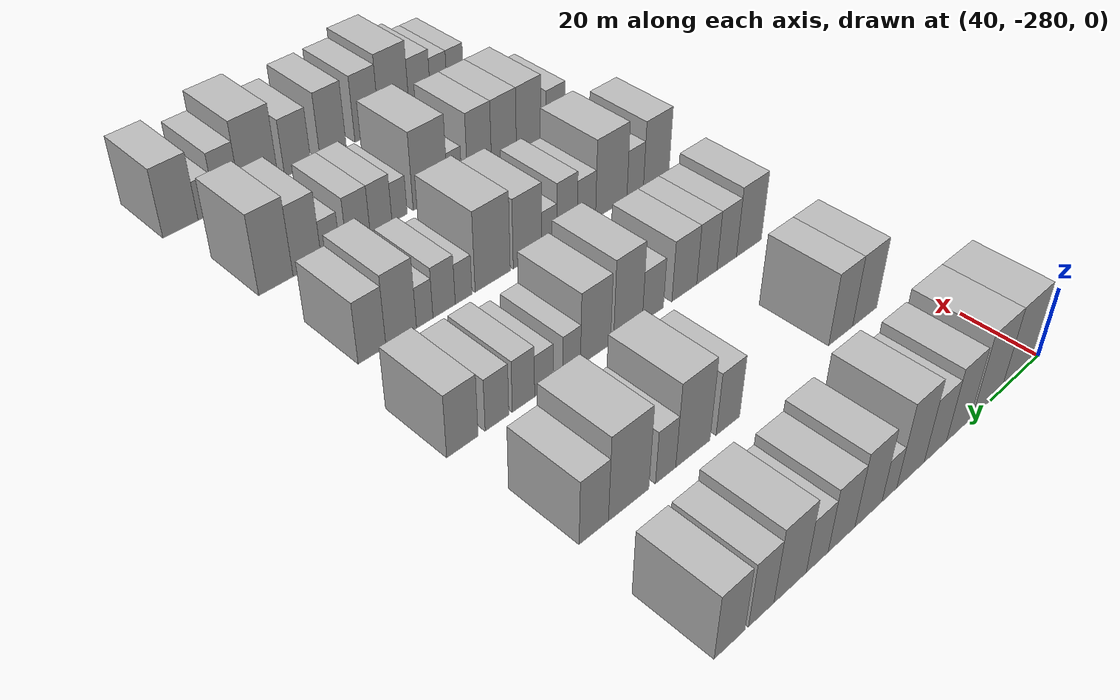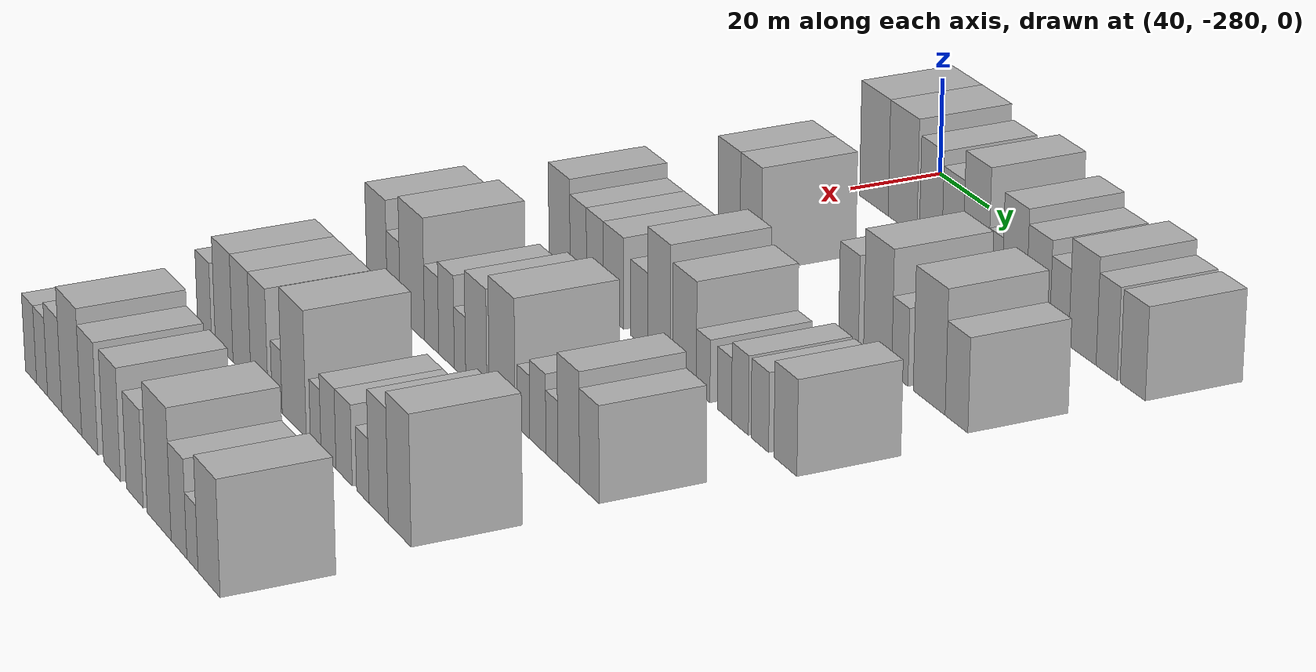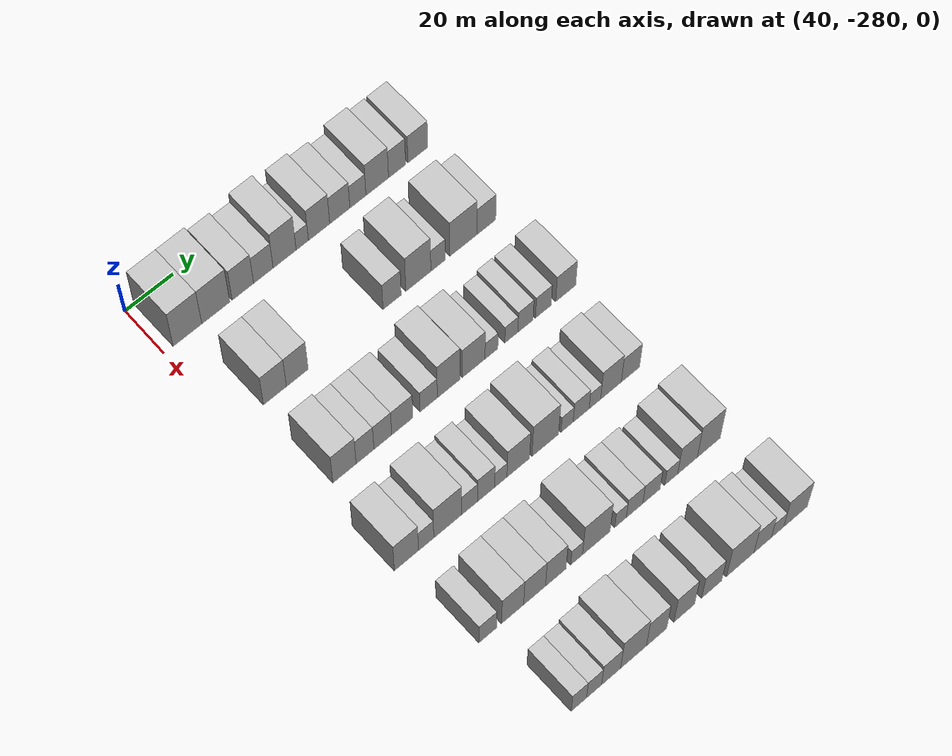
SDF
<sdf version="1.6">
 <world name="default">
  <model name="building_31">
   <static>1</static>
   <pose>50.0000 -270.3185 0 0.000000 0.000000 0.000000</pose>
   <link name="link">
    <pose>0 0 12.00 0 0 0</pose>
    <collision name="collision"><geometry><box><size>20.0000 11.9749 24.0000</size></box></geometry></collision>
    <visual name="visual">
     <cast_shadows>0</cast_shadows>
     <geometry><box><size>20.0000 11.9749 24.0000</size></box></geometry>
     <material>
      <script>
       <uri>model://HANNAS_wall/materials/scripts</uri>
       <uri>model://HANNAS_wall/materials/textures</uri>
       <name>vrc/HANNAS_wall</name>
      </script>
     </material>
    </visual>
   </link>
  </model>
  <model name="building_32">
   <static>1</static>
   <pose>50.0000 -258.4586 0 0.000000 0.000000 0.000000</pose>
   <link name="link">
    <pose>0 0 12.00 0 0 0</pose>
    <collision name="collision"><geometry><box><size>20.0000 11.7450 24.0000</size></box></geometry></collision>
    <visual name="visual">
     <cast_shadows>0</cast_shadows>
     <geometry><box><size>20.0000 11.7450 24.0000</size></box></geometry>
     <material>
      <script>
       <uri>model://HANNAS_wall/materials/scripts</uri>
       <uri>model://HANNAS_wall/materials/textures</uri>
       <name>vrc/HANNAS_wall</name>
      </script>
     </material>
    </visual>
   </link>
  </model>
  <model name="building_33">
   <static>1</static>
   <pose>50.0000 -247.0642 0 0.000000 0.000000 0.000000</pose>
   <link name="link">
    <pose>0 0 10.50 0 0 0</pose>
    <collision name="collision"><geometry><box><size>20.0000 9.0438 21.0000</size></box></geometry></collision>
    <visual name="visual">
     <cast_shadows>0</cast_shadows>
     <geometry><box><size>20.0000 9.0438 21.0000</size></box></geometry>
     <material>
      <script>
       <uri>model://HANNAS_wall/materials/scripts</uri>
       <uri>model://HANNAS_wall/materials/textures</uri>
       <name>vrc/HANNAS_wall</name>
      </script>
     </material>
    </visual>
   </link>
  </model>
  <model name="building_34">
   <static>1</static>
   <pose>50.0000 -238.4008 0 0.000000 0.000000 0.000000</pose>
   <link name="link">
    <pose>0 0 9.00 0 0 0</pose>
    <collision name="collision"><geometry><box><size>20.0000 8.2828 18.0000</size></box></geometry></collision>
    <visual name="visual">
     <cast_shadows>0</cast_shadows>
     <geometry><box><size>20.0000 8.2828 18.0000</size></box></geometry>
     <material>
      <script>
       <uri>model://HANNAS_wall/materials/scripts</uri>
       <uri>model://HANNAS_wall/materials/textures</uri>
       <name>vrc/HANNAS_wall</name>
      </script>
     </material>
    </visual>
   </link>
  </model>
  <model name="building_35">
   <static>1</static>
   <pose>50.0000 -229.3392 0 0.000000 0.000000 0.000000</pose>
   <link name="link">
    <pose>0 0 12.00 0 0 0</pose>
    <collision name="collision"><geometry><box><size>20.0000 9.8405 24.0000</size></box></geometry></collision>
    <visual name="visual">
     <cast_shadows>0</cast_shadows>
     <geometry><box><size>20.0000 9.8405 24.0000</size></box></geometry>
     <material>
      <script>
       <uri>model://HANNAS_wall/materials/scripts</uri>
       <uri>model://HANNAS_wall/materials/textures</uri>
       <name>vrc/HANNAS_wall</name>
      </script>
     </material>
    </visual>
   </link>
  </model>
  <model name="building_36">
   <static>1</static>
   <pose>50.0000 -221.7960 0 0.000000 0.000000 0.000000</pose>
   <link name="link">
    <pose>0 0 6.00 0 0 0</pose>
    <collision name="collision"><geometry><box><size>20.0000 5.2460 12.0000</size></box></geometry></collision>
    <visual name="visual">
     <cast_shadows>0</cast_shadows>
     <geometry><box><size>20.0000 5.2460 12.0000</size></box></geometry>
     <material>
      <script>
       <uri>model://HANNAS_wall/materials/scripts</uri>
       <uri>model://HANNAS_wall/materials/textures</uri>
       <name>vrc/HANNAS_wall</name>
      </script>
     </material>
    </visual>
   </link>
  </model>
  <model name="building_37">
   <static>1</static>
   <pose>50.0000 -214.5822 0 0.000000 0.000000 0.000000</pose>
   <link name="link">
    <pose>0 0 10.50 0 0 0</pose>
    <collision name="collision"><geometry><box><size>20.0000 9.1816 21.0000</size></box></geometry></collision>
    <visual name="visual">
     <cast_shadows>0</cast_shadows>
     <geometry><box><size>20.0000 9.1816 21.0000</size></box></geometry>
     <material>
      <script>
       <uri>model://HANNAS_wall/materials/scripts</uri>
       <uri>model://HANNAS_wall/materials/textures</uri>
       <name>vrc/HANNAS_wall</name>
      </script>
     </material>
    </visual>
   </link>
  </model>
  <model name="building_38">
   <static>1</static>
   <pose>50.0000 -205.6249 0 0.000000 0.000000 0.000000</pose>
   <link name="link">
    <pose>0 0 9.00 0 0 0</pose>
    <collision name="collision"><geometry><box><size>20.0000 8.7328 18.0000</size></box></geometry></collision>
    <visual name="visual">
     <cast_shadows>0</cast_shadows>
     <geometry><box><size>20.0000 8.7328 18.0000</size></box></geometry>
     <material>
      <script>
       <uri>model://HANNAS_wall/materials/scripts</uri>
       <uri>model://HANNAS_wall/materials/textures</uri>
       <name>vrc/HANNAS_wall</name>
      </script>
     </material>
    </visual>
   </link>
  </model>
  <model name="building_39">
   <static>1</static>
   <pose>50.0000 -197.7768 0 0.000000 0.000000 0.000000</pose>
   <link name="link">
    <pose>0 0 7.50 0 0 0</pose>
    <collision name="collision"><geometry><box><size>20.0000 6.9634 15.0000</size></box></geometry></collision>
    <visual name="visual">
     <cast_shadows>0</cast_shadows>
     <geometry><box><size>20.0000 6.9634 15.0000</size></box></geometry>
     <material>
      <script>
       <uri>model://HANNAS_wall/materials/scripts</uri>
       <uri>model://HANNAS_wall/materials/textures</uri>
       <name>vrc/HANNAS_wall</name>
      </script>
     </material>
    </visual>
   </link>
  </model>
  <model name="building_40">
   <static>1</static>
   <pose>50.0000 -189.3632 0 0.000000 0.000000 0.000000</pose>
   <link name="link">
    <pose>0 0 10.50 0 0 0</pose>
    <collision name="collision"><geometry><box><size>20.0000 9.8637 21.0000</size></box></geometry></collision>
    <visual name="visual">
     <cast_shadows>0</cast_shadows>
     <geometry><box><size>20.0000 9.8637 21.0000</size></box></geometry>
     <material>
      <script>
       <uri>model://HANNAS_wall/materials/scripts</uri>
       <uri>model://HANNAS_wall/materials/textures</uri>
       <name>vrc/HANNAS_wall</name>
      </script>
     </material>
    </visual>
   </link>
  </model>
  <model name="building_41">
   <static>1</static>
   <pose>50.0000 -180.6862 0 0.000000 0.000000 0.000000</pose>
   <link name="link">
    <pose>0 0 9.00 0 0 0</pose>
    <collision name="collision"><geometry><box><size>20.0000 7.4904 18.0000</size></box></geometry></collision>
    <visual name="visual">
     <cast_shadows>0</cast_shadows>
     <geometry><box><size>20.0000 7.4904 18.0000</size></box></geometry>
     <material>
      <script>
       <uri>model://HANNAS_wall/materials/scripts</uri>
       <uri>model://HANNAS_wall/materials/textures</uri>
       <name>vrc/HANNAS_wall</name>
      </script>
     </material>
    </visual>
   </link>
  </model>
  <model name="building_42">
   <static>1</static>
   <pose>50.0000 -171.5861 0 0.000000 0.000000 0.000000</pose>
   <link name="link">
    <pose>0 0 9.00 0 0 0</pose>
    <collision name="collision"><geometry><box><size>20.0000 8.7097 18.0000</size></box></geometry></collision>
    <visual name="visual">
     <cast_shadows>0</cast_shadows>
     <geometry><box><size>20.0000 8.7097 18.0000</size></box></geometry>
     <material>
      <script>
       <uri>model://HANNAS_wall/materials/scripts</uri>
       <uri>model://HANNAS_wall/materials/textures</uri>
       <name>vrc/HANNAS_wall</name>
      </script>
     </material>
    </visual>
   </link>
  </model>
  <model name="building_164">
   <static>1</static>
   <pose>85.0000 -263.0079 0 0.000000 0.000000 0.000000</pose>
   <link name="link">
    <pose>0 0 10.50 0 0 0</pose>
    <collision name="collision"><geometry><box><size>20.0000 9.5994 21.0000</size></box></geometry></collision>
    <visual name="visual">
     <cast_shadows>0</cast_shadows>
     <geometry><box><size>20.0000 9.5994 21.0000</size></box></geometry>
     <material>
      <script>
       <uri>model://HANNAS_wall/materials/scripts</uri>
       <uri>model://HANNAS_wall/materials/textures</uri>
       <name>vrc/HANNAS_wall</name>
      </script>
     </material>
    </visual>
   </link>
  </model>
  <model name="building_165">
   <static>1</static>
   <pose>85.0000 -253.6409 0 0.000000 0.000000 0.000000</pose>
   <link name="link">
    <pose>0 0 10.50 0 0 0</pose>
    <collision name="collision"><geometry><box><size>20.0000 9.1347 21.0000</size></box></geometry></collision>
    <visual name="visual">
     <cast_shadows>0</cast_shadows>
     <geometry><box><size>20.0000 9.1347 21.0000</size></box></geometry>
     <material>
      <script>
       <uri>model://HANNAS_wall/materials/scripts</uri>
       <uri>model://HANNAS_wall/materials/textures</uri>
       <name>vrc/HANNAS_wall</name>
      </script>
     </material>
    </visual>
   </link>
  </model>
  <model name="building_166">
   <static>1</static>
   <pose>85.0000 -213.3983 0 0.000000 0.000000 0.000000</pose>
   <link name="link">
    <pose>0 0 9.00 0 0 0</pose>
    <collision name="collision"><geometry><box><size>20.0000 7.7835 18.0000</size></box></geometry></collision>
    <visual name="visual">
     <cast_shadows>0</cast_shadows>
     <geometry><box><size>20.0000 7.7835 18.0000</size></box></geometry>
     <material>
      <script>
       <uri>model://HANNAS_wall/materials/scripts</uri>
       <uri>model://HANNAS_wall/materials/textures</uri>
       <name>vrc/HANNAS_wall</name>
      </script>
     </material>
    </visual>
   </link>
  </model>
  <model name="building_167">
   <static>1</static>
   <pose>85.0000 -202.0763 0 0.000000 0.000000 0.000000</pose>
   <link name="link">
    <pose>0 0 12.00 0 0 0</pose>
    <collision name="collision"><geometry><box><size>20.0000 10.8606 24.0000</size></box></geometry></collision>
    <visual name="visual">
     <cast_shadows>0</cast_shadows>
     <geometry><box><size>20.0000 10.8606 24.0000</size></box></geometry>
     <material>
      <script>
       <uri>model://HANNAS_wall/materials/scripts</uri>
       <uri>model://HANNAS_wall/materials/textures</uri>
       <name>vrc/HANNAS_wall</name>
      </script>
     </material>
    </visual>
   </link>
  </model>
  <model name="building_168">
   <static>1</static>
   <pose>85.0000 -193.5476 0 0.000000 0.000000 0.000000</pose>
   <link name="link">
    <pose>0 0 7.50 0 0 0</pose>
    <collision name="collision"><geometry><box><size>20.0000 6.1969 15.0000</size></box></geometry></collision>
    <visual name="visual">
     <cast_shadows>0</cast_shadows>
     <geometry><box><size>20.0000 6.1969 15.0000</size></box></geometry>
     <material>
      <script>
       <uri>model://HANNAS_wall/materials/scripts</uri>
       <uri>model://HANNAS_wall/materials/textures</uri>
       <name>vrc/HANNAS_wall</name>
      </script>
     </material>
    </visual>
   </link>
  </model>
  <model name="building_169">
   <static>1</static>
   <pose>85.0000 -182.5237 0 0.000000 0.000000 0.000000</pose>
   <link name="link">
    <pose>0 0 12.00 0 0 0</pose>
    <collision name="collision"><geometry><box><size>20.0000 11.8508 24.0000</size></box></geometry></collision>
    <visual name="visual">
     <cast_shadows>0</cast_shadows>
     <geometry><box><size>20.0000 11.8508 24.0000</size></box></geometry>
     <material>
      <script>
       <uri>model://HANNAS_wall/materials/scripts</uri>
       <uri>model://HANNAS_wall/materials/textures</uri>
       <name>vrc/HANNAS_wall</name>
      </script>
     </material>
    </visual>
   </link>
  </model>
  <model name="building_170">
   <static>1</static>
   <pose>85.0000 -172.4711 0 0.000000 0.000000 0.000000</pose>
   <link name="link">
    <pose>0 0 9.00 0 0 0</pose>
    <collision name="collision"><geometry><box><size>20.0000 8.2545 18.0000</size></box></geometry></collision>
    <visual name="visual">
     <cast_shadows>0</cast_shadows>
     <geometry><box><size>20.0000 8.2545 18.0000</size></box></geometry>
     <material>
      <script>
       <uri>model://HANNAS_wall/materials/scripts</uri>
       <uri>model://HANNAS_wall/materials/textures</uri>
       <name>vrc/HANNAS_wall</name>
      </script>
     </material>
    </visual>
   </link>
  </model>
  <model name="building_288">
   <static>1</static>
   <pose>120.0000 -263.8185 0 0.000000 0.000000 0.000000</pose>
   <link name="link">
    <pose>0 0 10.50 0 0 0</pose>
    <collision name="collision"><geometry><box><size>20.0000 9.7054 21.0000</size></box></geometry></collision>
    <visual name="visual">
     <cast_shadows>0</cast_shadows>
     <geometry><box><size>20.0000 9.7054 21.0000</size></box></geometry>
     <material>
      <script>
       <uri>model://HANNAS_wall/materials/scripts</uri>
       <uri>model://HANNAS_wall/materials/textures</uri>
       <name>vrc/HANNAS_wall</name>
      </script>
     </material>
    </visual>
   </link>
  </model>
  <model name="building_289">
   <static>1</static>
   <pose>120.0000 -255.2500 0 0.000000 0.000000 0.000000</pose>
   <link name="link">
    <pose>0 0 9.00 0 0 0</pose>
    <collision name="collision"><geometry><box><size>20.0000 7.4316 18.0000</size></box></geometry></collision>
    <visual name="visual">
     <cast_shadows>0</cast_shadows>
     <geometry><box><size>20.0000 7.4316 18.0000</size></box></geometry>
     <material>
      <script>
       <uri>model://HANNAS_wall/materials/scripts</uri>
       <uri>model://HANNAS_wall/materials/textures</uri>
       <name>vrc/HANNAS_wall</name>
      </script>
     </material>
    </visual>
   </link>
  </model>
  <model name="building_290">
   <static>1</static>
   <pose>120.0000 -247.8072 0 0.000000 0.000000 0.000000</pose>
   <link name="link">
    <pose>0 0 9.00 0 0 0</pose>
    <collision name="collision"><geometry><box><size>20.0000 7.4539 18.0000</size></box></geometry></collision>
    <visual name="visual">
     <cast_shadows>0</cast_shadows>
     <geometry><box><size>20.0000 7.4539 18.0000</size></box></geometry>
     <material>
      <script>
       <uri>model://HANNAS_wall/materials/scripts</uri>
       <uri>model://HANNAS_wall/materials/textures</uri>
       <name>vrc/HANNAS_wall</name>
      </script>
     </material>
    </visual>
   </link>
  </model>
  <model name="building_291">
   <static>1</static>
   <pose>120.0000 -239.5957 0 0.000000 0.000000 0.000000</pose>
   <link name="link">
    <pose>0 0 9.00 0 0 0</pose>
    <collision name="collision"><geometry><box><size>20.0000 8.9692 18.0000</size></box></geometry></collision>
    <visual name="visual">
     <cast_shadows>0</cast_shadows>
     <geometry><box><size>20.0000 8.9692 18.0000</size></box></geometry>
     <material>
      <script>
       <uri>model://HANNAS_wall/materials/scripts</uri>
       <uri>model://HANNAS_wall/materials/textures</uri>
       <name>vrc/HANNAS_wall</name>
      </script>
     </material>
    </visual>
   </link>
  </model>
  <model name="building_292">
   <static>1</static>
   <pose>120.0000 -228.4507 0 0.000000 0.000000 0.000000</pose>
   <link name="link">
    <pose>0 0 7.50 0 0 0</pose>
    <collision name="collision"><geometry><box><size>20.0000 7.3207 15.0000</size></box></geometry></collision>
    <visual name="visual">
     <cast_shadows>0</cast_shadows>
     <geometry><box><size>20.0000 7.3207 15.0000</size></box></geometry>
     <material>
      <script>
       <uri>model://HANNAS_wall/materials/scripts</uri>
       <uri>model://HANNAS_wall/materials/textures</uri>
       <name>vrc/HANNAS_wall</name>
      </script>
     </material>
    </visual>
   </link>
  </model>
  <model name="building_293">
   <static>1</static>
   <pose>120.0000 -219.9503 0 0.000000 0.000000 0.000000</pose>
   <link name="link">
    <pose>0 0 12.00 0 0 0</pose>
    <collision name="collision"><geometry><box><size>20.0000 9.6802 24.0000</size></box></geometry></collision>
    <visual name="visual">
     <cast_shadows>0</cast_shadows>
     <geometry><box><size>20.0000 9.6802 24.0000</size></box></geometry>
     <material>
      <script>
       <uri>model://HANNAS_wall/materials/scripts</uri>
       <uri>model://HANNAS_wall/materials/textures</uri>
       <name>vrc/HANNAS_wall</name>
      </script>
     </material>
    </visual>
   </link>
  </model>
  <model name="building_294">
   <static>1</static>
   <pose>120.0000 -209.2475 0 0.000000 0.000000 0.000000</pose>
   <link name="link">
    <pose>0 0 10.50 0 0 0</pose>
    <collision name="collision"><geometry><box><size>20.0000 9.7254 21.0000</size></box></geometry></collision>
    <visual name="visual">
     <cast_shadows>0</cast_shadows>
     <geometry><box><size>20.0000 9.7254 21.0000</size></box></geometry>
     <material>
      <script>
       <uri>model://HANNAS_wall/materials/scripts</uri>
       <uri>model://HANNAS_wall/materials/textures</uri>
       <name>vrc/HANNAS_wall</name>
      </script>
     </material>
    </visual>
   </link>
  </model>
  <model name="building_295">
   <static>1</static>
   <pose>120.0000 -201.6144 0 0.000000 0.000000 0.000000</pose>
   <link name="link">
    <pose>0 0 6.00 0 0 0</pose>
    <collision name="collision"><geometry><box><size>20.0000 5.5409 12.0000</size></box></geometry></collision>
    <visual name="visual">
     <cast_shadows>0</cast_shadows>
     <geometry><box><size>20.0000 5.5409 12.0000</size></box></geometry>
     <material>
      <script>
       <uri>model://HANNAS_wall/materials/scripts</uri>
       <uri>model://HANNAS_wall/materials/textures</uri>
       <name>vrc/HANNAS_wall</name>
      </script>
     </material>
    </visual>
   </link>
  </model>
  <model name="building_296">
   <static>1</static>
   <pose>120.0000 -193.0082 0 0.000000 0.000000 0.000000</pose>
   <link name="link">
    <pose>0 0 6.00 0 0 0</pose>
    <collision name="collision"><geometry><box><size>20.0000 5.6714 12.0000</size></box></geometry></collision>
    <visual name="visual">
     <cast_shadows>0</cast_shadows>
     <geometry><box><size>20.0000 5.6714 12.0000</size></box></geometry>
     <material>
      <script>
       <uri>model://HANNAS_wall/materials/scripts</uri>
       <uri>model://HANNAS_wall/materials/textures</uri>
       <name>vrc/HANNAS_wall</name>
      </script>
     </material>
    </visual>
   </link>
  </model>
  <model name="building_297">
   <static>1</static>
   <pose>120.0000 -186.8403 0 0.000000 0.000000 0.000000</pose>
   <link name="link">
    <pose>0 0 7.50 0 0 0</pose>
    <collision name="collision"><geometry><box><size>20.0000 6.6644 15.0000</size></box></geometry></collision>
    <visual name="visual">
     <cast_shadows>0</cast_shadows>
     <geometry><box><size>20.0000 6.6644 15.0000</size></box></geometry>
     <material>
      <script>
       <uri>model://HANNAS_wall/materials/scripts</uri>
       <uri>model://HANNAS_wall/materials/textures</uri>
       <name>vrc/HANNAS_wall</name>
      </script>
     </material>
    </visual>
   </link>
  </model>
  <model name="building_298">
   <static>1</static>
   <pose>120.0000 -179.0783 0 0.000000 0.000000 0.000000</pose>
   <link name="link">
    <pose>0 0 7.50 0 0 0</pose>
    <collision name="collision"><geometry><box><size>20.0000 6.8597 15.0000</size></box></geometry></collision>
    <visual name="visual">
     <cast_shadows>0</cast_shadows>
     <geometry><box><size>20.0000 6.8597 15.0000</size></box></geometry>
     <material>
      <script>
       <uri>model://HANNAS_wall/materials/scripts</uri>
       <uri>model://HANNAS_wall/materials/textures</uri>
       <name>vrc/HANNAS_wall</name>
      </script>
     </material>
    </visual>
   </link>
  </model>
  <model name="building_299">
   <static>1</static>
   <pose>120.0000 -169.2567 0 0.000000 0.000000 0.000000</pose>
   <link name="link">
    <pose>0 0 9.00 0 0 0</pose>
    <collision name="collision"><geometry><box><size>20.0000 8.7834 18.0000</size></box></geometry></collision>
    <visual name="visual">
     <cast_shadows>0</cast_shadows>
     <geometry><box><size>20.0000 8.7834 18.0000</size></box></geometry>
     <material>
      <script>
       <uri>model://HANNAS_wall/materials/scripts</uri>
       <uri>model://HANNAS_wall/materials/textures</uri>
       <name>vrc/HANNAS_wall</name>
      </script>
     </material>
    </visual>
   </link>
  </model>
  <model name="building_414">
   <static>1</static>
   <pose>155.0000 -268.5350 0 0.000000 0.000000 0.000000</pose>
   <link name="link">
    <pose>0 0 10.50 0 0 0</pose>
    <collision name="collision"><geometry><box><size>20.0000 10.0150 21.0000</size></box></geometry></collision>
    <visual name="visual">
     <cast_shadows>0</cast_shadows>
     <geometry><box><size>20.0000 10.0150 21.0000</size></box></geometry>
     <material>
      <script>
       <uri>model://HANNAS_wall/materials/scripts</uri>
       <uri>model://HANNAS_wall/materials/textures</uri>
       <name>vrc/HANNAS_wall</name>
      </script>
     </material>
    </visual>
   </link>
  </model>
  <model name="building_415">
   <static>1</static>
   <pose>155.0000 -260.3625 0 0.000000 0.000000 0.000000</pose>
   <link name="link">
    <pose>0 0 7.50 0 0 0</pose>
    <collision name="collision"><geometry><box><size>20.0000 6.3299 15.0000</size></box></geometry></collision>
    <visual name="visual">
     <cast_shadows>0</cast_shadows>
     <geometry><box><size>20.0000 6.3299 15.0000</size></box></geometry>
     <material>
      <script>
       <uri>model://HANNAS_wall/materials/scripts</uri>
       <uri>model://HANNAS_wall/materials/textures</uri>
       <name>vrc/HANNAS_wall</name>
      </script>
     </material>
    </visual>
   </link>
  </model>
  <model name="building_416">
   <static>1</static>
   <pose>155.0000 -251.3551 0 0.000000 0.000000 0.000000</pose>
   <link name="link">
    <pose>0 0 12.00 0 0 0</pose>
    <collision name="collision"><geometry><box><size>20.0000 11.6850 24.0000</size></box></geometry></collision>
    <visual name="visual">
     <cast_shadows>0</cast_shadows>
     <geometry><box><size>20.0000 11.6850 24.0000</size></box></geometry>
     <material>
      <script>
       <uri>model://HANNAS_wall/materials/scripts</uri>
       <uri>model://HANNAS_wall/materials/textures</uri>
       <name>vrc/HANNAS_wall</name>
      </script>
     </material>
    </visual>
   </link>
  </model>
  <model name="building_417">
   <static>1</static>
   <pose>155.0000 -242.1895 0 0.000000 0.000000 0.000000</pose>
   <link name="link">
    <pose>0 0 7.50 0 0 0</pose>
    <collision name="collision"><geometry><box><size>20.0000 6.6463 15.0000</size></box></geometry></collision>
    <visual name="visual">
     <cast_shadows>0</cast_shadows>
     <geometry><box><size>20.0000 6.6463 15.0000</size></box></geometry>
     <material>
      <script>
       <uri>model://HANNAS_wall/materials/scripts</uri>
       <uri>model://HANNAS_wall/materials/textures</uri>
       <name>vrc/HANNAS_wall</name>
      </script>
     </material>
    </visual>
   </link>
  </model>
  <model name="building_418">
   <static>1</static>
   <pose>155.0000 -235.2524 0 0.000000 0.000000 0.000000</pose>
   <link name="link">
    <pose>0 0 9.00 0 0 0</pose>
    <collision name="collision"><geometry><box><size>20.0000 7.2278 18.0000</size></box></geometry></collision>
    <visual name="visual">
     <cast_shadows>0</cast_shadows>
     <geometry><box><size>20.0000 7.2278 18.0000</size></box></geometry>
     <material>
      <script>
       <uri>model://HANNAS_wall/materials/scripts</uri>
       <uri>model://HANNAS_wall/materials/textures</uri>
       <name>vrc/HANNAS_wall</name>
      </script>
     </material>
    </visual>
   </link>
  </model>
  <model name="building_419">
   <static>1</static>
   <pose>155.0000 -229.0465 0 0.000000 0.000000 0.000000</pose>
   <link name="link">
    <pose>0 0 6.00 0 0 0</pose>
    <collision name="collision"><geometry><box><size>20.0000 5.1840 12.0000</size></box></geometry></collision>
    <visual name="visual">
     <cast_shadows>0</cast_shadows>
     <geometry><box><size>20.0000 5.1840 12.0000</size></box></geometry>
     <material>
      <script>
       <uri>model://HANNAS_wall/materials/scripts</uri>
       <uri>model://HANNAS_wall/materials/textures</uri>
       <name>vrc/HANNAS_wall</name>
      </script>
     </material>
    </visual>
   </link>
  </model>
  <model name="building_420">
   <static>1</static>
   <pose>155.0000 -221.6247 0 0.000000 0.000000 0.000000</pose>
   <link name="link">
    <pose>0 0 10.50 0 0 0</pose>
    <collision name="collision"><geometry><box><size>20.0000 9.6597 21.0000</size></box></geometry></collision>
    <visual name="visual">
     <cast_shadows>0</cast_shadows>
     <geometry><box><size>20.0000 9.6597 21.0000</size></box></geometry>
     <material>
      <script>
       <uri>model://HANNAS_wall/materials/scripts</uri>
       <uri>model://HANNAS_wall/materials/textures</uri>
       <name>vrc/HANNAS_wall</name>
      </script>
     </material>
    </visual>
   </link>
  </model>
  <model name="building_421">
   <static>1</static>
   <pose>155.0000 -210.0795 0 0.000000 0.000000 0.000000</pose>
   <link name="link">
    <pose>0 0 12.00 0 0 0</pose>
    <collision name="collision"><geometry><box><size>20.0000 11.4308 24.0000</size></box></geometry></collision>
    <visual name="visual">
     <cast_shadows>0</cast_shadows>
     <geometry><box><size>20.0000 11.4308 24.0000</size></box></geometry>
     <material>
      <script>
       <uri>model://HANNAS_wall/materials/scripts</uri>
       <uri>model://HANNAS_wall/materials/textures</uri>
       <name>vrc/HANNAS_wall</name>
      </script>
     </material>
    </visual>
   </link>
  </model>
  <model name="building_422">
   <static>1</static>
   <pose>155.0000 -200.7262 0 0.000000 0.000000 0.000000</pose>
   <link name="link">
    <pose>0 0 6.00 0 0 0</pose>
    <collision name="collision"><geometry><box><size>20.0000 5.2757 12.0000</size></box></geometry></collision>
    <visual name="visual">
     <cast_shadows>0</cast_shadows>
     <geometry><box><size>20.0000 5.2757 12.0000</size></box></geometry>
     <material>
      <script>
       <uri>model://HANNAS_wall/materials/scripts</uri>
       <uri>model://HANNAS_wall/materials/textures</uri>
       <name>vrc/HANNAS_wall</name>
      </script>
     </material>
    </visual>
   </link>
  </model>
  <model name="building_423">
   <static>1</static>
   <pose>155.0000 -194.6465 0 0.000000 0.000000 0.000000</pose>
   <link name="link">
    <pose>0 0 7.50 0 0 0</pose>
    <collision name="collision"><geometry><box><size>20.0000 6.8836 15.0000</size></box></geometry></collision>
    <visual name="visual">
     <cast_shadows>0</cast_shadows>
     <geometry><box><size>20.0000 6.8836 15.0000</size></box></geometry>
     <material>
      <script>
       <uri>model://HANNAS_wall/materials/scripts</uri>
       <uri>model://HANNAS_wall/materials/textures</uri>
       <name>vrc/HANNAS_wall</name>
      </script>
     </material>
    </visual>
   </link>
  </model>
  <model name="building_424">
   <static>1</static>
   <pose>155.0000 -188.7124 0 0.000000 0.000000 0.000000</pose>
   <link name="link">
    <pose>0 0 6.00 0 0 0</pose>
    <collision name="collision"><geometry><box><size>20.0000 4.9846 12.0000</size></box></geometry></collision>
    <visual name="visual">
     <cast_shadows>0</cast_shadows>
     <geometry><box><size>20.0000 4.9846 12.0000</size></box></geometry>
     <material>
      <script>
       <uri>model://HANNAS_wall/materials/scripts</uri>
       <uri>model://HANNAS_wall/materials/textures</uri>
       <name>vrc/HANNAS_wall</name>
      </script>
     </material>
    </visual>
   </link>
  </model>
  <model name="building_425">
   <static>1</static>
   <pose>155.0000 -181.7088 0 0.000000 0.000000 0.000000</pose>
   <link name="link">
    <pose>0 0 10.50 0 0 0</pose>
    <collision name="collision"><geometry><box><size>20.0000 9.0227 21.0000</size></box></geometry></collision>
    <visual name="visual">
     <cast_shadows>0</cast_shadows>
     <geometry><box><size>20.0000 9.0227 21.0000</size></box></geometry>
     <material>
      <script>
       <uri>model://HANNAS_wall/materials/scripts</uri>
       <uri>model://HANNAS_wall/materials/textures</uri>
       <name>vrc/HANNAS_wall</name>
      </script>
     </material>
    </visual>
   </link>
  </model>
  <model name="building_426">
   <static>1</static>
   <pose>155.0000 -173.2056 0 0.000000 0.000000 0.000000</pose>
   <link name="link">
    <pose>0 0 9.00 0 0 0</pose>
    <collision name="collision"><geometry><box><size>20.0000 7.9836 18.0000</size></box></geometry></collision>
    <visual name="visual">
     <cast_shadows>0</cast_shadows>
     <geometry><box><size>20.0000 7.9836 18.0000</size></box></geometry>
     <material>
      <script>
       <uri>model://HANNAS_wall/materials/scripts</uri>
       <uri>model://HANNAS_wall/materials/textures</uri>
       <name>vrc/HANNAS_wall</name>
      </script>
     </material>
    </visual>
   </link>
  </model>
  <model name="building_540">
   <static>1</static>
   <pose>190.0000 -265.8811 0 0.000000 0.000000 0.000000</pose>
   <link name="link">
    <pose>0 0 7.50 0 0 0</pose>
    <collision name="collision"><geometry><box><size>20.0000 7.3421 15.0000</size></box></geometry></collision>
    <visual name="visual">
     <cast_shadows>0</cast_shadows>
     <geometry><box><size>20.0000 7.3421 15.0000</size></box></geometry>
     <material>
      <script>
       <uri>model://HANNAS_wall/materials/scripts</uri>
       <uri>model://HANNAS_wall/materials/textures</uri>
       <name>vrc/HANNAS_wall</name>
      </script>
     </material>
    </visual>
   </link>
  </model>
  <model name="building_541">
   <static>1</static>
   <pose>190.0000 -255.6050 0 0.000000 0.000000 0.000000</pose>
   <link name="link">
    <pose>0 0 10.50 0 0 0</pose>
    <collision name="collision"><geometry><box><size>20.0000 9.2102 21.0000</size></box></geometry></collision>
    <visual name="visual">
     <cast_shadows>0</cast_shadows>
     <geometry><box><size>20.0000 9.2102 21.0000</size></box></geometry>
     <material>
      <script>
       <uri>model://HANNAS_wall/materials/scripts</uri>
       <uri>model://HANNAS_wall/materials/textures</uri>
       <name>vrc/HANNAS_wall</name>
      </script>
     </material>
    </visual>
   </link>
  </model>
  <model name="building_542">
   <static>1</static>
   <pose>190.0000 -246.4374 0 0.000000 0.000000 0.000000</pose>
   <link name="link">
    <pose>0 0 10.50 0 0 0</pose>
    <collision name="collision"><geometry><box><size>20.0000 9.1250 21.0000</size></box></geometry></collision>
    <visual name="visual">
     <cast_shadows>0</cast_shadows>
     <geometry><box><size>20.0000 9.1250 21.0000</size></box></geometry>
     <material>
      <script>
       <uri>model://HANNAS_wall/materials/scripts</uri>
       <uri>model://HANNAS_wall/materials/textures</uri>
       <name>vrc/HANNAS_wall</name>
      </script>
     </material>
    </visual>
   </link>
  </model>
  <model name="building_543">
   <static>1</static>
   <pose>190.0000 -237.5644 0 0.000000 0.000000 0.000000</pose>
   <link name="link">
    <pose>0 0 10.50 0 0 0</pose>
    <collision name="collision"><geometry><box><size>20.0000 8.6208 21.0000</size></box></geometry></collision>
    <visual name="visual">
     <cast_shadows>0</cast_shadows>
     <geometry><box><size>20.0000 8.6208 21.0000</size></box></geometry>
     <material>
      <script>
       <uri>model://HANNAS_wall/materials/scripts</uri>
       <uri>model://HANNAS_wall/materials/textures</uri>
       <name>vrc/HANNAS_wall</name>
      </script>
     </material>
    </visual>
   </link>
  </model>
  <model name="building_544">
   <static>1</static>
   <pose>190.0000 -228.7762 0 0.000000 0.000000 0.000000</pose>
   <link name="link">
    <pose>0 0 6.00 0 0 0</pose>
    <collision name="collision"><geometry><box><size>20.0000 4.9556 12.0000</size></box></geometry></collision>
    <visual name="visual">
     <cast_shadows>0</cast_shadows>
     <geometry><box><size>20.0000 4.9556 12.0000</size></box></geometry>
     <material>
      <script>
       <uri>model://HANNAS_wall/materials/scripts</uri>
       <uri>model://HANNAS_wall/materials/textures</uri>
       <name>vrc/HANNAS_wall</name>
      </script>
     </material>
    </visual>
   </link>
  </model>
  <model name="building_545">
   <static>1</static>
   <pose>190.0000 -220.4555 0 0.000000 0.000000 0.000000</pose>
   <link name="link">
    <pose>0 0 12.00 0 0 0</pose>
    <collision name="collision"><geometry><box><size>20.0000 11.6858 24.0000</size></box></geometry></collision>
    <visual name="visual">
     <cast_shadows>0</cast_shadows>
     <geometry><box><size>20.0000 11.6858 24.0000</size></box></geometry>
     <material>
      <script>
       <uri>model://HANNAS_wall/materials/scripts</uri>
       <uri>model://HANNAS_wall/materials/textures</uri>
       <name>vrc/HANNAS_wall</name>
      </script>
     </material>
    </visual>
   </link>
  </model>
  <model name="building_546">
   <static>1</static>
   <pose>190.0000 -210.1210 0 0.000000 0.000000 0.000000</pose>
   <link name="link">
    <pose>0 0 6.00 0 0 0</pose>
    <collision name="collision"><geometry><box><size>20.0000 4.9834 12.0000</size></box></geometry></collision>
    <visual name="visual">
     <cast_shadows>0</cast_shadows>
     <geometry><box><size>20.0000 4.9834 12.0000</size></box></geometry>
     <material>
      <script>
       <uri>model://HANNAS_wall/materials/scripts</uri>
       <uri>model://HANNAS_wall/materials/textures</uri>
       <name>vrc/HANNAS_wall</name>
      </script>
     </material>
    </visual>
   </link>
  </model>
  <model name="building_547">
   <static>1</static>
   <pose>190.0000 -204.1133 0 0.000000 0.000000 0.000000</pose>
   <link name="link">
    <pose>0 0 7.50 0 0 0</pose>
    <collision name="collision"><geometry><box><size>20.0000 7.0320 15.0000</size></box></geometry></collision>
    <visual name="visual">
     <cast_shadows>0</cast_shadows>
     <geometry><box><size>20.0000 7.0320 15.0000</size></box></geometry>
     <material>
      <script>
       <uri>model://HANNAS_wall/materials/scripts</uri>
       <uri>model://HANNAS_wall/materials/textures</uri>
       <name>vrc/HANNAS_wall</name>
      </script>
     </material>
    </visual>
   </link>
  </model>
  <model name="building_548">
   <static>1</static>
   <pose>190.0000 -196.8736 0 0.000000 0.000000 0.000000</pose>
   <link name="link">
    <pose>0 0 7.50 0 0 0</pose>
    <collision name="collision"><geometry><box><size>20.0000 7.4473 15.0000</size></box></geometry></collision>
    <visual name="visual">
     <cast_shadows>0</cast_shadows>
     <geometry><box><size>20.0000 7.4473 15.0000</size></box></geometry>
     <material>
      <script>
       <uri>model://HANNAS_wall/materials/scripts</uri>
       <uri>model://HANNAS_wall/materials/textures</uri>
       <name>vrc/HANNAS_wall</name>
      </script>
     </material>
    </visual>
   </link>
  </model>
  <model name="building_549">
   <static>1</static>
   <pose>190.0000 -188.3260 0 0.000000 0.000000 0.000000</pose>
   <link name="link">
    <pose>0 0 6.00 0 0 0</pose>
    <collision name="collision"><geometry><box><size>20.0000 5.6480 12.0000</size></box></geometry></collision>
    <visual name="visual">
     <cast_shadows>0</cast_shadows>
     <geometry><box><size>20.0000 5.6480 12.0000</size></box></geometry>
     <material>
      <script>
       <uri>model://HANNAS_wall/materials/scripts</uri>
       <uri>model://HANNAS_wall/materials/textures</uri>
       <name>vrc/HANNAS_wall</name>
      </script>
     </material>
    </visual>
   </link>
  </model>
  <model name="building_550">
   <static>1</static>
   <pose>190.0000 -181.2407 0 0.000000 0.000000 0.000000</pose>
   <link name="link">
    <pose>0 0 10.50 0 0 0</pose>
    <collision name="collision"><geometry><box><size>20.0000 8.5226 21.0000</size></box></geometry></collision>
    <visual name="visual">
     <cast_shadows>0</cast_shadows>
     <geometry><box><size>20.0000 8.5226 21.0000</size></box></geometry>
     <material>
      <script>
       <uri>model://HANNAS_wall/materials/scripts</uri>
       <uri>model://HANNAS_wall/materials/textures</uri>
       <name>vrc/HANNAS_wall</name>
      </script>
     </material>
    </visual>
   </link>
  </model>
  <model name="building_551">
   <static>1</static>
   <pose>190.0000 -171.9782 0 0.000000 0.000000 0.000000</pose>
   <link name="link">
    <pose>0 0 12.00 0 0 0</pose>
    <collision name="collision"><geometry><box><size>20.0000 10.0024 24.0000</size></box></geometry></collision>
    <visual name="visual">
     <cast_shadows>0</cast_shadows>
     <geometry><box><size>20.0000 10.0024 24.0000</size></box></geometry>
     <material>
      <script>
       <uri>model://HANNAS_wall/materials/scripts</uri>
       <uri>model://HANNAS_wall/materials/textures</uri>
       <name>vrc/HANNAS_wall</name>
      </script>
     </material>
    </visual>
   </link>
  </model>
  <model name="building_665">
   <static>1</static>
   <pose>225.0000 -259.9789 0 0.000000 0.000000 0.000000</pose>
   <link name="link">
    <pose>0 0 7.50 0 0 0</pose>
    <collision name="collision"><geometry><box><size>20.0000 6.3618 15.0000</size></box></geometry></collision>
    <visual name="visual">
     <cast_shadows>0</cast_shadows>
     <geometry><box><size>20.0000 6.3618 15.0000</size></box></geometry>
     <material>
      <script>
       <uri>model://HANNAS_wall/materials/scripts</uri>
       <uri>model://HANNAS_wall/materials/textures</uri>
       <name>vrc/HANNAS_wall</name>
      </script>
     </material>
    </visual>
   </link>
  </model>
  <model name="building_666">
   <static>1</static>
   <pose>225.0000 -253.6850 0 0.000000 0.000000 0.000000</pose>
   <link name="link">
    <pose>0 0 7.50 0 0 0</pose>
    <collision name="collision"><geometry><box><size>20.0000 6.2260 15.0000</size></box></geometry></collision>
    <visual name="visual">
     <cast_shadows>0</cast_shadows>
     <geometry><box><size>20.0000 6.2260 15.0000</size></box></geometry>
     <material>
      <script>
       <uri>model://HANNAS_wall/materials/scripts</uri>
       <uri>model://HANNAS_wall/materials/textures</uri>
       <name>vrc/HANNAS_wall</name>
      </script>
     </material>
    </visual>
   </link>
  </model>
  <model name="building_667">
   <static>1</static>
   <pose>225.0000 -246.6144 0 0.000000 0.000000 0.000000</pose>
   <link name="link">
    <pose>0 0 9.00 0 0 0</pose>
    <collision name="collision"><geometry><box><size>20.0000 7.9152 18.0000</size></box></geometry></collision>
    <visual name="visual">
     <cast_shadows>0</cast_shadows>
     <geometry><box><size>20.0000 7.9152 18.0000</size></box></geometry>
     <material>
      <script>
       <uri>model://HANNAS_wall/materials/scripts</uri>
       <uri>model://HANNAS_wall/materials/textures</uri>
       <name>vrc/HANNAS_wall</name>
      </script>
     </material>
    </visual>
   </link>
  </model>
  <model name="building_668">
   <static>1</static>
   <pose>225.0000 -237.2426 0 0.000000 0.000000 0.000000</pose>
   <link name="link">
    <pose>0 0 12.00 0 0 0</pose>
    <collision name="collision"><geometry><box><size>20.0000 10.8284 24.0000</size></box></geometry></collision>
    <visual name="visual">
     <cast_shadows>0</cast_shadows>
     <geometry><box><size>20.0000 10.8284 24.0000</size></box></geometry>
     <material>
      <script>
       <uri>model://HANNAS_wall/materials/scripts</uri>
       <uri>model://HANNAS_wall/materials/textures</uri>
       <name>vrc/HANNAS_wall</name>
      </script>
     </material>
    </visual>
   </link>
  </model>
  <model name="building_669">
   <static>1</static>
   <pose>225.0000 -227.5236 0 0.000000 0.000000 0.000000</pose>
   <link name="link">
    <pose>0 0 10.50 0 0 0</pose>
    <collision name="collision"><geometry><box><size>20.0000 8.6096 21.0000</size></box></geometry></collision>
    <visual name="visual">
     <cast_shadows>0</cast_shadows>
     <geometry><box><size>20.0000 8.6096 21.0000</size></box></geometry>
     <material>
      <script>
       <uri>model://HANNAS_wall/materials/scripts</uri>
       <uri>model://HANNAS_wall/materials/textures</uri>
       <name>vrc/HANNAS_wall</name>
      </script>
     </material>
    </visual>
   </link>
  </model>
  <model name="building_670">
   <static>1</static>
   <pose>225.0000 -215.8007 0 0.000000 0.000000 0.000000</pose>
   <link name="link">
    <pose>0 0 10.50 0 0 0</pose>
    <collision name="collision"><geometry><box><size>20.0000 8.8362 21.0000</size></box></geometry></collision>
    <visual name="visual">
     <cast_shadows>0</cast_shadows>
     <geometry><box><size>20.0000 8.8362 21.0000</size></box></geometry>
     <material>
      <script>
       <uri>model://HANNAS_wall/materials/scripts</uri>
       <uri>model://HANNAS_wall/materials/textures</uri>
       <name>vrc/HANNAS_wall</name>
      </script>
     </material>
    </visual>
   </link>
  </model>
  <model name="building_671">
   <static>1</static>
   <pose>225.0000 -204.0799 0 0.000000 0.000000 0.000000</pose>
   <link name="link">
    <pose>0 0 9.00 0 0 0</pose>
    <collision name="collision"><geometry><box><size>20.0000 8.6054 18.0000</size></box></geometry></collision>
    <visual name="visual">
     <cast_shadows>0</cast_shadows>
     <geometry><box><size>20.0000 8.6054 18.0000</size></box></geometry>
     <material>
      <script>
       <uri>model://HANNAS_wall/materials/scripts</uri>
       <uri>model://HANNAS_wall/materials/textures</uri>
       <name>vrc/HANNAS_wall</name>
      </script>
     </material>
    </visual>
   </link>
  </model>
  <model name="building_672">
   <static>1</static>
   <pose>225.0000 -191.8520 0 0.000000 0.000000 0.000000</pose>
   <link name="link">
    <pose>0 0 12.00 0 0 0</pose>
    <collision name="collision"><geometry><box><size>20.0000 11.8505 24.0000</size></box></geometry></collision>
    <visual name="visual">
     <cast_shadows>0</cast_shadows>
     <geometry><box><size>20.0000 11.8505 24.0000</size></box></geometry>
     <material>
      <script>
       <uri>model://HANNAS_wall/materials/scripts</uri>
       <uri>model://HANNAS_wall/materials/textures</uri>
       <name>vrc/HANNAS_wall</name>
      </script>
     </material>
    </visual>
   </link>
  </model>
  <model name="building_673">
   <static>1</static>
   <pose>225.0000 -182.1291 0 0.000000 0.000000 0.000000</pose>
   <link name="link">
    <pose>0 0 9.00 0 0 0</pose>
    <collision name="collision"><geometry><box><size>20.0000 7.5953 18.0000</size></box></geometry></collision>
    <visual name="visual">
     <cast_shadows>0</cast_shadows>
     <geometry><box><size>20.0000 7.5953 18.0000</size></box></geometry>
     <material>
      <script>
       <uri>model://HANNAS_wall/materials/scripts</uri>
       <uri>model://HANNAS_wall/materials/textures</uri>
       <name>vrc/HANNAS_wall</name>
      </script>
     </material>
    </visual>
   </link>
  </model>
  <model name="building_674">
   <static>1</static>
   <pose>225.0000 -175.6571 0 0.000000 0.000000 0.000000</pose>
   <link name="link">
    <pose>0 0 6.00 0 0 0</pose>
    <collision name="collision"><geometry><box><size>20.0000 5.3487 12.0000</size></box></geometry></collision>
    <visual name="visual">
     <cast_shadows>0</cast_shadows>
     <geometry><box><size>20.0000 5.3487 12.0000</size></box></geometry>
     <material>
      <script>
       <uri>model://HANNAS_wall/materials/scripts</uri>
       <uri>model://HANNAS_wall/materials/textures</uri>
       <name>vrc/HANNAS_wall</name>
      </script>
     </material>
    </visual>
   </link>
  </model>
  <model name="building_675">
   <static>1</static>
   <pose>225.0000 -167.8278 0 0.000000 0.000000 0.000000</pose>
   <link name="link">
    <pose>0 0 10.50 0 0 0</pose>
    <collision name="collision"><geometry><box><size>20.0000 10.3100 21.0000</size></box></geometry></collision>
    <visual name="visual">
     <cast_shadows>0</cast_shadows>
     <geometry><box><size>20.0000 10.3100 21.0000</size></box></geometry>
     <material>
      <script>
       <uri>model://HANNAS_wall/materials/scripts</uri>
       <uri>model://HANNAS_wall/materials/textures</uri>
       <name>vrc/HANNAS_wall</name>
      </script>
     </material>
    </visual>
   </link>
  </model>
 </world>
</sdf>
